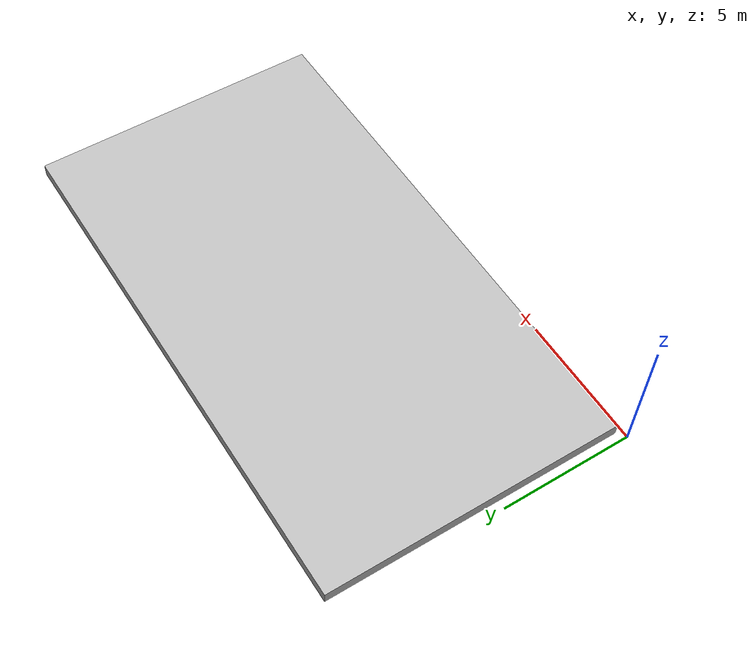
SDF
<sdf version="1.6">
  <world name="default">
    <light name="sun" type="directional">
      <cast_shadows>true</cast_shadows>
      <pose>0 0 10 0 0 0</pose>
      <diffuse>1 1 1 1</diffuse>
      <specular>0.1 0.1 0.1 1</specular>
      <direction>-0.5 0.5 -1</direction>
    </light>

    <model name="ground">
      <pose>10.5 5.8 0 0 0 1.57</pose>
      <static>1</static>
      <link name="ground">
        <collision name="ground_coll">
          <geometry>
            <box>
              <size>11.35 20.15 0.5</size>
            </box>
          </geometry>
          <surface>
            <contact>
              <ode/>
            </contact>
          </surface>
        </collision>
        <visual name="ground_vis">
          <geometry>
            <box>
              <size>11.35 20.15 0.5</size>
            </box>
          </geometry>
          <material>
            <script>
              <uri> ./course.material </uri>  <!-- file://course.material -->
              <name>course</name>
            </script>
          </material>
        </visual>
      </link>
    </model>
  </world>
</sdf>
